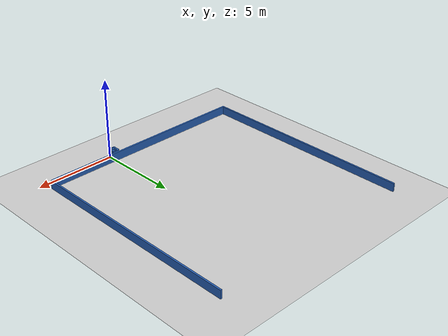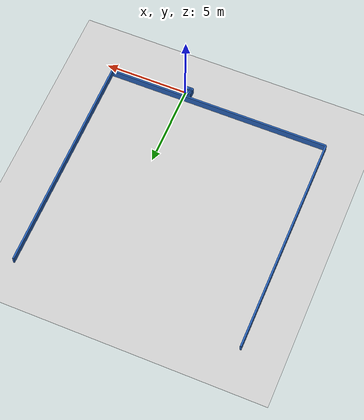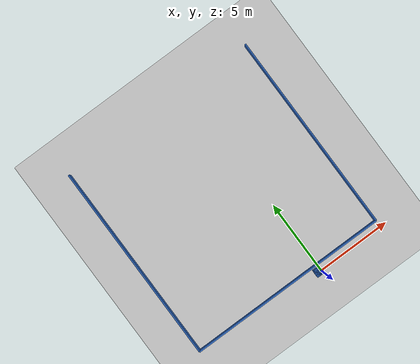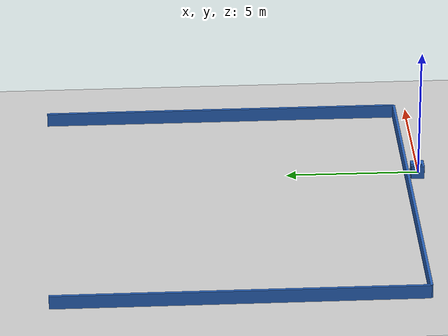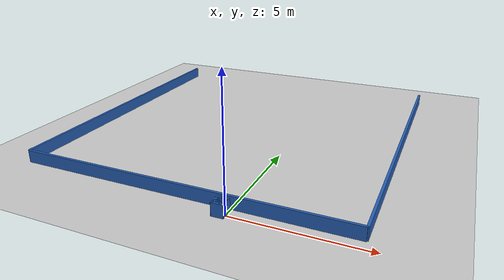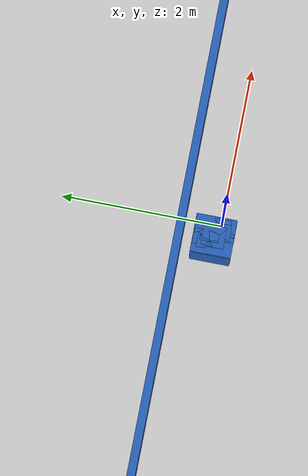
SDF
<?xml version="1.0" ?>
    <sdf version="1.5">
      <world name="default">
        <!-- A global light source -->
        <include>
          <uri>model://sun</uri>
        </include>
        <!-- A ground plane -->
        <include>
          <uri>model://ground_plane</uri>
        </include>

    <model name='libopen_space_final_T2B_134_32'>
      <static>1</static>
      <pose frame=''>-0.225000 0.075000 0.000000 0.000000 0.000000 0.000000</pose>
      <link name='link'>
        <inertial>
          <mass>1</mass>
          <inertia>
            <ixx>0.145833</ixx>
            <ixy>0</ixy>
            <ixz>0</ixz>
            <iyy>0.145833</iyy>
            <iyz>0</iyz>
            <izz>0.125</izz>
          </inertia>
        </inertial>
        <collision name='collision'>
          <geometry>
            <box>
              <size>0.48 0.49 1</size>
            </box>
          </geometry>
          <max_contacts>10</max_contacts>
          <surface>
            <contact>
              <ode/>
            </contact>
            <bounce/>
            <friction>
              <torsional>
                <ode/>
              </torsional>
              <ode/>
            </friction>
          </surface>
        </collision>
        <visual name='visual'>
          <geometry>
            <box>
              <size>0.48 0.49 1</size>
            </box>
          </geometry>
	    <material>
              <ambient>0.152000 0.379000 0.720000 1</ambient>
	      <diffuse>0.152000 0.379000 0.720000 1</diffuse>
          </material>
          <material>
            <script>
              <name>Gazebo/Grey</name>
              <uri>file://media/materials/scripts/gazebo.material</uri>
            </script>
          </material>
        </visual>
        <self_collide>0</self_collide>
        <kinematic>0</kinematic>
        <gravity>1</gravity>
      </link>
      <plugin name='libopen_space_final_T2B_134_32' filename='libopen_space_final_T2B_134_32.so'/>
    </model>

    <model name='libopen_space_final_T2B_77_83'>
      <static>1</static>
      <pose frame=''>-0.225000 0.075000 0.000000 0.000000 0.000000 0.000000</pose>
      <link name='link'>
        <inertial>
          <mass>1</mass>
          <inertia>
            <ixx>0.145833</ixx>
            <ixy>0</ixy>
            <ixz>0</ixz>
            <iyy>0.145833</iyy>
            <iyz>0</iyz>
            <izz>0.125</izz>
          </inertia>
        </inertial>
        <collision name='collision'>
          <geometry>
            <box>
              <size>0.46 0.50 1</size>
            </box>
          </geometry>
          <max_contacts>10</max_contacts>
          <surface>
            <contact>
              <ode/>
            </contact>
            <bounce/>
            <friction>
              <torsional>
                <ode/>
              </torsional>
              <ode/>
            </friction>
          </surface>
        </collision>
        <visual name='visual'>
          <geometry>
            <box>
              <size>0.46 0.50 1</size>
            </box>
          </geometry>
	    <material>
              <ambient>0.152000 0.379000 0.720000 1</ambient>
	      <diffuse>0.152000 0.379000 0.720000 1</diffuse>
          </material>
          <material>
            <script>
              <name>Gazebo/Grey</name>
              <uri>file://media/materials/scripts/gazebo.material</uri>
            </script>
          </material>
        </visual>
        <self_collide>0</self_collide>
        <kinematic>0</kinematic>
        <gravity>1</gravity>
      </link>
      <plugin name='libopen_space_final_T2B_77_83' filename='libopen_space_final_T2B_77_83.so'/>
    </model>

    <model name='libopen_space_final_T2B_64_52'>
      <static>1</static>
      <pose frame=''>-0.225000 0.075000 0.000000 0.000000 0.000000 0.000000</pose>
      <link name='link'>
        <inertial>
          <mass>1</mass>
          <inertia>
            <ixx>0.145833</ixx>
            <ixy>0</ixy>
            <ixz>0</ixz>
            <iyy>0.145833</iyy>
            <iyz>0</iyz>
            <izz>0.125</izz>
          </inertia>
        </inertial>
        <collision name='collision'>
          <geometry>
            <box>
              <size>0.25 0.28 1</size>
            </box>
          </geometry>
          <max_contacts>10</max_contacts>
          <surface>
            <contact>
              <ode/>
            </contact>
            <bounce/>
            <friction>
              <torsional>
                <ode/>
              </torsional>
              <ode/>
            </friction>
          </surface>
        </collision>
        <visual name='visual'>
          <geometry>
            <box>
              <size>0.25 0.28 1</size>
            </box>
          </geometry>
	    <material>
              <ambient>0.152000 0.379000 0.720000 1</ambient>
	      <diffuse>0.152000 0.379000 0.720000 1</diffuse>
          </material>
          <material>
            <script>
              <name>Gazebo/Grey</name>
              <uri>file://media/materials/scripts/gazebo.material</uri>
            </script>
          </material>
        </visual>
        <self_collide>0</self_collide>
        <kinematic>0</kinematic>
        <gravity>1</gravity>
      </link>
      <plugin name='libopen_space_final_T2B_64_52' filename='libopen_space_final_T2B_64_52.so'/>
    </model>

    <model name='libopen_space_final_T2B_51_19'>
      <static>1</static>
      <pose frame=''>-0.225000 0.075000 0.000000 0.000000 0.000000 0.000000</pose>
      <link name='link'>
        <inertial>
          <mass>1</mass>
          <inertia>
            <ixx>0.145833</ixx>
            <ixy>0</ixy>
            <ixz>0</ixz>
            <iyy>0.145833</iyy>
            <iyz>0</iyz>
            <izz>0.125</izz>
          </inertia>
        </inertial>
        <collision name='collision'>
          <geometry>
            <box>
              <size>0.37 0.14 1</size>
            </box>
          </geometry>
          <max_contacts>10</max_contacts>
          <surface>
            <contact>
              <ode/>
            </contact>
            <bounce/>
            <friction>
              <torsional>
                <ode/>
              </torsional>
              <ode/>
            </friction>
          </surface>
        </collision>
        <visual name='visual'>
          <geometry>
            <box>
              <size>0.37 0.14 1</size>
            </box>
          </geometry>
	    <material>
              <ambient>0.152000 0.379000 0.720000 1</ambient>
	      <diffuse>0.152000 0.379000 0.720000 1</diffuse>
          </material>
          <material>
            <script>
              <name>Gazebo/Grey</name>
              <uri>file://media/materials/scripts/gazebo.material</uri>
            </script>
          </material>
        </visual>
        <self_collide>0</self_collide>
        <kinematic>0</kinematic>
        <gravity>1</gravity>
      </link>
      <plugin name='libopen_space_final_T2B_51_19' filename='libopen_space_final_T2B_51_19.so'/>
    </model>

    <model name='libopen_space_final_T2B_99_64'>
      <static>1</static>
      <pose frame=''>-0.225000 0.075000 0.000000 0.000000 0.000000 0.000000</pose>
      <link name='link'>
        <inertial>
          <mass>1</mass>
          <inertia>
            <ixx>0.145833</ixx>
            <ixy>0</ixy>
            <ixz>0</ixz>
            <iyy>0.145833</iyy>
            <iyz>0</iyz>
            <izz>0.125</izz>
          </inertia>
        </inertial>
        <collision name='collision'>
          <geometry>
            <box>
              <size>0.44 0.36 1</size>
            </box>
          </geometry>
          <max_contacts>10</max_contacts>
          <surface>
            <contact>
              <ode/>
            </contact>
            <bounce/>
            <friction>
              <torsional>
                <ode/>
              </torsional>
              <ode/>
            </friction>
          </surface>
        </collision>
        <visual name='visual'>
          <geometry>
            <box>
              <size>0.44 0.36 1</size>
            </box>
          </geometry>
	    <material>
              <ambient>0.152000 0.379000 0.720000 1</ambient>
	      <diffuse>0.152000 0.379000 0.720000 1</diffuse>
          </material>
          <material>
            <script>
              <name>Gazebo/Grey</name>
              <uri>file://media/materials/scripts/gazebo.material</uri>
            </script>
          </material>
        </visual>
        <self_collide>0</self_collide>
        <kinematic>0</kinematic>
        <gravity>1</gravity>
      </link>
      <plugin name='libopen_space_final_T2B_99_64' filename='libopen_space_final_T2B_99_64.so'/>
    </model>

    <model name='libopen_space_final_T2B_90_95'>
      <static>1</static>
      <pose frame=''>-0.225000 0.075000 0.000000 0.000000 0.000000 0.000000</pose>
      <link name='link'>
        <inertial>
          <mass>1</mass>
          <inertia>
            <ixx>0.145833</ixx>
            <ixy>0</ixy>
            <ixz>0</ixz>
            <iyy>0.145833</iyy>
            <iyz>0</iyz>
            <izz>0.125</izz>
          </inertia>
        </inertial>
        <collision name='collision'>
          <geometry>
            <box>
              <size>0.15 0.34 1</size>
            </box>
          </geometry>
          <max_contacts>10</max_contacts>
          <surface>
            <contact>
              <ode/>
            </contact>
            <bounce/>
            <friction>
              <torsional>
                <ode/>
              </torsional>
              <ode/>
            </friction>
          </surface>
        </collision>
        <visual name='visual'>
          <geometry>
            <box>
              <size>0.15 0.34 1</size>
            </box>
          </geometry>
	    <material>
              <ambient>0.152000 0.379000 0.720000 1</ambient>
	      <diffuse>0.152000 0.379000 0.720000 1</diffuse>
          </material>
          <material>
            <script>
              <name>Gazebo/Grey</name>
              <uri>file://media/materials/scripts/gazebo.material</uri>
            </script>
          </material>
        </visual>
        <self_collide>0</self_collide>
        <kinematic>0</kinematic>
        <gravity>1</gravity>
      </link>
      <plugin name='libopen_space_final_T2B_90_95' filename='libopen_space_final_T2B_90_95.so'/>
    </model>

    <model name='libopen_space_final_T2B_123_20'>
      <static>1</static>
      <pose frame=''>-0.225000 0.075000 0.000000 0.000000 0.000000 0.000000</pose>
      <link name='link'>
        <inertial>
          <mass>1</mass>
          <inertia>
            <ixx>0.145833</ixx>
            <ixy>0</ixy>
            <ixz>0</ixz>
            <iyy>0.145833</iyy>
            <iyz>0</iyz>
            <izz>0.125</izz>
          </inertia>
        </inertial>
        <collision name='collision'>
          <geometry>
            <box>
              <size>0.26 0.14 1</size>
            </box>
          </geometry>
          <max_contacts>10</max_contacts>
          <surface>
            <contact>
              <ode/>
            </contact>
            <bounce/>
            <friction>
              <torsional>
                <ode/>
              </torsional>
              <ode/>
            </friction>
          </surface>
        </collision>
        <visual name='visual'>
          <geometry>
            <box>
              <size>0.26 0.14 1</size>
            </box>
          </geometry>
	    <material>
              <ambient>0.152000 0.379000 0.720000 1</ambient>
	      <diffuse>0.152000 0.379000 0.720000 1</diffuse>
          </material>
          <material>
            <script>
              <name>Gazebo/Grey</name>
              <uri>file://media/materials/scripts/gazebo.material</uri>
            </script>
          </material>
        </visual>
        <self_collide>0</self_collide>
        <kinematic>0</kinematic>
        <gravity>1</gravity>
      </link>
      <plugin name='libopen_space_final_T2B_123_20' filename='libopen_space_final_T2B_123_20.so'/>
    </model>

    <model name='libopen_space_final_T2B_92_34'>
      <static>1</static>
      <pose frame=''>-0.225000 0.075000 0.000000 0.000000 0.000000 0.000000</pose>
      <link name='link'>
        <inertial>
          <mass>1</mass>
          <inertia>
            <ixx>0.145833</ixx>
            <ixy>0</ixy>
            <ixz>0</ixz>
            <iyy>0.145833</iyy>
            <iyz>0</iyz>
            <izz>0.125</izz>
          </inertia>
        </inertial>
        <collision name='collision'>
          <geometry>
            <box>
              <size>0.33 0.38 1</size>
            </box>
          </geometry>
          <max_contacts>10</max_contacts>
          <surface>
            <contact>
              <ode/>
            </contact>
            <bounce/>
            <friction>
              <torsional>
                <ode/>
              </torsional>
              <ode/>
            </friction>
          </surface>
        </collision>
        <visual name='visual'>
          <geometry>
            <box>
              <size>0.33 0.38 1</size>
            </box>
          </geometry>
	    <material>
              <ambient>0.152000 0.379000 0.720000 1</ambient>
	      <diffuse>0.152000 0.379000 0.720000 1</diffuse>
          </material>
          <material>
            <script>
              <name>Gazebo/Grey</name>
              <uri>file://media/materials/scripts/gazebo.material</uri>
            </script>
          </material>
        </visual>
        <self_collide>0</self_collide>
        <kinematic>0</kinematic>
        <gravity>1</gravity>
      </link>
      <plugin name='libopen_space_final_T2B_92_34' filename='libopen_space_final_T2B_92_34.so'/>
    </model>

    <model name='libopen_space_final_T2B_57_87'>
      <static>1</static>
      <pose frame=''>-0.225000 0.075000 0.000000 0.000000 0.000000 0.000000</pose>
      <link name='link'>
        <inertial>
          <mass>1</mass>
          <inertia>
            <ixx>0.145833</ixx>
            <ixy>0</ixy>
            <ixz>0</ixz>
            <iyy>0.145833</iyy>
            <iyz>0</iyz>
            <izz>0.125</izz>
          </inertia>
        </inertial>
        <collision name='collision'>
          <geometry>
            <box>
              <size>0.28 0.28 1</size>
            </box>
          </geometry>
          <max_contacts>10</max_contacts>
          <surface>
            <contact>
              <ode/>
            </contact>
            <bounce/>
            <friction>
              <torsional>
                <ode/>
              </torsional>
              <ode/>
            </friction>
          </surface>
        </collision>
        <visual name='visual'>
          <geometry>
            <box>
              <size>0.28 0.28 1</size>
            </box>
          </geometry>
	    <material>
              <ambient>0.152000 0.379000 0.720000 1</ambient>
	      <diffuse>0.152000 0.379000 0.720000 1</diffuse>
          </material>
          <material>
            <script>
              <name>Gazebo/Grey</name>
              <uri>file://media/materials/scripts/gazebo.material</uri>
            </script>
          </material>
        </visual>
        <self_collide>0</self_collide>
        <kinematic>0</kinematic>
        <gravity>1</gravity>
      </link>
      <plugin name='libopen_space_final_T2B_57_87' filename='libopen_space_final_T2B_57_87.so'/>
    </model>

    <model name='libopen_space_final_T2B_83_23'>
      <static>1</static>
      <pose frame=''>-0.225000 0.075000 0.000000 0.000000 0.000000 0.000000</pose>
      <link name='link'>
        <inertial>
          <mass>1</mass>
          <inertia>
            <ixx>0.145833</ixx>
            <ixy>0</ixy>
            <ixz>0</ixz>
            <iyy>0.145833</iyy>
            <iyz>0</iyz>
            <izz>0.125</izz>
          </inertia>
        </inertial>
        <collision name='collision'>
          <geometry>
            <box>
              <size>0.15 0.32 1</size>
            </box>
          </geometry>
          <max_contacts>10</max_contacts>
          <surface>
            <contact>
              <ode/>
            </contact>
            <bounce/>
            <friction>
              <torsional>
                <ode/>
              </torsional>
              <ode/>
            </friction>
          </surface>
        </collision>
        <visual name='visual'>
          <geometry>
            <box>
              <size>0.15 0.32 1</size>
            </box>
          </geometry>
	    <material>
              <ambient>0.152000 0.379000 0.720000 1</ambient>
	      <diffuse>0.152000 0.379000 0.720000 1</diffuse>
          </material>
          <material>
            <script>
              <name>Gazebo/Grey</name>
              <uri>file://media/materials/scripts/gazebo.material</uri>
            </script>
          </material>
        </visual>
        <self_collide>0</self_collide>
        <kinematic>0</kinematic>
        <gravity>1</gravity>
      </link>
      <plugin name='libopen_space_final_T2B_83_23' filename='libopen_space_final_T2B_83_23.so'/>
    </model>

    <model name='libopen_space_final_T2B_52_49'>
      <static>1</static>
      <pose frame=''>-0.225000 0.075000 0.000000 0.000000 0.000000 0.000000</pose>
      <link name='link'>
        <inertial>
          <mass>1</mass>
          <inertia>
            <ixx>0.145833</ixx>
            <ixy>0</ixy>
            <ixz>0</ixz>
            <iyy>0.145833</iyy>
            <iyz>0</iyz>
            <izz>0.125</izz>
          </inertia>
        </inertial>
        <collision name='collision'>
          <geometry>
            <box>
              <size>0.12 0.48 1</size>
            </box>
          </geometry>
          <max_contacts>10</max_contacts>
          <surface>
            <contact>
              <ode/>
            </contact>
            <bounce/>
            <friction>
              <torsional>
                <ode/>
              </torsional>
              <ode/>
            </friction>
          </surface>
        </collision>
        <visual name='visual'>
          <geometry>
            <box>
              <size>0.12 0.48 1</size>
            </box>
          </geometry>
	    <material>
              <ambient>0.152000 0.379000 0.720000 1</ambient>
	      <diffuse>0.152000 0.379000 0.720000 1</diffuse>
          </material>
          <material>
            <script>
              <name>Gazebo/Grey</name>
              <uri>file://media/materials/scripts/gazebo.material</uri>
            </script>
          </material>
        </visual>
        <self_collide>0</self_collide>
        <kinematic>0</kinematic>
        <gravity>1</gravity>
      </link>
      <plugin name='libopen_space_final_T2B_52_49' filename='libopen_space_final_T2B_52_49.so'/>
    </model>

    <model name='libopen_space_final_T2B_125_59'>
      <static>1</static>
      <pose frame=''>-0.225000 0.075000 0.000000 0.000000 0.000000 0.000000</pose>
      <link name='link'>
        <inertial>
          <mass>1</mass>
          <inertia>
            <ixx>0.145833</ixx>
            <ixy>0</ixy>
            <ixz>0</ixz>
            <iyy>0.145833</iyy>
            <iyz>0</iyz>
            <izz>0.125</izz>
          </inertia>
        </inertial>
        <collision name='collision'>
          <geometry>
            <box>
              <size>0.43 0.22 1</size>
            </box>
          </geometry>
          <max_contacts>10</max_contacts>
          <surface>
            <contact>
              <ode/>
            </contact>
            <bounce/>
            <friction>
              <torsional>
                <ode/>
              </torsional>
              <ode/>
            </friction>
          </surface>
        </collision>
        <visual name='visual'>
          <geometry>
            <box>
              <size>0.43 0.22 1</size>
            </box>
          </geometry>
	    <material>
              <ambient>0.152000 0.379000 0.720000 1</ambient>
	      <diffuse>0.152000 0.379000 0.720000 1</diffuse>
          </material>
          <material>
            <script>
              <name>Gazebo/Grey</name>
              <uri>file://media/materials/scripts/gazebo.material</uri>
            </script>
          </material>
        </visual>
        <self_collide>0</self_collide>
        <kinematic>0</kinematic>
        <gravity>1</gravity>
      </link>
      <plugin name='libopen_space_final_T2B_125_59' filename='libopen_space_final_T2B_125_59.so'/>
    </model>

        <model name='bottom_wall'>
          <static>1</static>
          <pose frame=''>-2.25 0.5 0.000000 0.000000 0.000000 1.57079632</pose>
          <link name='link'>
            <inertial>
            <mass>1</mass>
            <inertia>
              <ixx>0.145833</ixx>
              <ixy>0</ixy>
              <ixz>0</ixz>
              <iyy>0.145833</iyy>
              <iyz>0</iyz>
              <izz>0.125</izz>
            </inertia>
            </inertial>
            <collision name='collision'>
            <geometry>
              <box>
              <size>0.1 13.5 1</size>
              </box>
            </geometry>
            <max_contacts>10</max_contacts>
            <surface>
              <contact>
              <ode/>
              </contact>
              <bounce/>
              <friction>
              <torsional>
                <ode/>
              </torsional>
              <ode/>
              </friction>
            </surface>
            </collision>
            <visual name='visual'>
            <geometry>
              <box>
              <size>0.1 13.5 1</size>
              </box>
            </geometry>
            <material>
              <ambient>0.152000 0.379000 0.720000 1</ambient>
            <diffuse>0.152000 0.379000 0.720000 1</diffuse>
            </material>
            <material>
              <script>
              <name>Gazebo/Grey</name>
              <uri>file://media/materials/scripts/gazebo.material</uri>
              </script>
            </material>
            </visual>
            <self_collide>0</self_collide>
            <kinematic>0</kinematic>
            <gravity>1</gravity>
          </link>
        </model>

        <model name='left_wall'>
          <static>1</static>
          <pose frame=''>-9 7.25 0.000000 0.000000 0.000000 0.000000</pose>
          <link name='link'>
            <inertial>
            <mass>1</mass>
            <inertia>
              <ixx>0.145833</ixx>
              <ixy>0</ixy>
              <ixz>0</ixz>
              <iyy>0.145833</iyy>
              <iyz>0</iyz>
              <izz>0.125</izz>
            </inertia>
            </inertial>
            <collision name='collision'>
            <geometry>
              <box>
              <size>0.1 13.5 1</size>
              </box>
            </geometry>
            <max_contacts>10</max_contacts>
            <surface>
              <contact>
              <ode/>
              </contact>
              <bounce/>
              <friction>
              <torsional>
                <ode/>
              </torsional>
              <ode/>
              </friction>
            </surface>
            </collision>
            <visual name='visual'>
            <geometry>
              <box>
              <size>0.1 13.5 1</size>
              </box>
            </geometry>
            <material>
              <ambient>0.152000 0.379000 0.720000 1</ambient>
            <diffuse>0.152000 0.379000 0.720000 1</diffuse>
            </material>
            <material>
              <script>
              <name>Gazebo/Grey</name>
              <uri>file://media/materials/scripts/gazebo.material</uri>
              </script>
            </material>
            </visual>
            <self_collide>0</self_collide>
            <kinematic>0</kinematic>
            <gravity>1</gravity>
          </link>
        </model>

        <model name='right_wall'>
          <static>1</static>
          <pose frame=''>4.5 7.25 0.000000 0.000000 0.000000 0.000000</pose>
          <link name='link'>
            <inertial>
            <mass>1</mass>
            <inertia>
              <ixx>0.145833</ixx>
              <ixy>0</ixy>
              <ixz>0</ixz>
              <iyy>0.145833</iyy>
              <iyz>0</iyz>
              <izz>0.125</izz>
            </inertia>
            </inertial>
            <collision name='collision'>
            <geometry>
              <box>
              <size>0.1 13.5 1</size>
              </box>
            </geometry>
            <max_contacts>10</max_contacts>
            <surface>
              <contact>
              <ode/>
              </contact>
              <bounce/>
              <friction>
              <torsional>
                <ode/>
              </torsional>
              <ode/>
              </friction>
            </surface>
            </collision>
            <visual name='visual'>
            <geometry>
              <box>
              <size>0.1 13.5 1</size>
              </box>
            </geometry>
            <material>
              <ambient>0.152000 0.379000 0.720000 1</ambient>
            <diffuse>0.152000 0.379000 0.720000 1</diffuse>
            </material>
            <material>
              <script>
              <name>Gazebo/Grey</name>
              <uri>file://media/materials/scripts/gazebo.material</uri>
              </script>
            </material>
            </visual>
            <self_collide>0</self_collide>
            <kinematic>0</kinematic>
            <gravity>1</gravity>
          </link>
        </model>

      </world>
    </sdf>"
